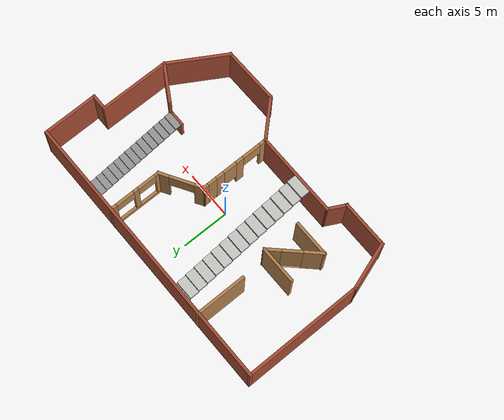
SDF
<?xml version='1.0'?>
<sdf version='1.7'>
  <model name='zsq'>
    <pose>0.816761 -0.486913 0 0 -0 0</pose>
    <link name='Stairs_1'>
      <visual name='Stairs_1_Visual_0'>
        <pose>-4.28021 8.9176 0.166667 0 -0 0</pose>
        <geometry>
          <box>
            <size>2.03694 1.02497 0.333333</size>
          </box>
        </geometry>
        <material>
          <script>
            <uri>file://media/materials/scripts/gazebo.material</uri>
            <name>Gazebo/CeilingTiled</name>
          </script>
          <ambient>1 1 1 1</ambient>
        </material>
        <meta>
          <layer>0</layer>
        </meta>
      </visual>
      <collision name='Stairs_1_Collision_0'>
        <geometry>
          <box>
            <size>2.03694 1.02497 0.333333</size>
          </box>
        </geometry>
        <pose>-4.28021 8.9176 0.166667 0 -0 0</pose>
      </collision>
      <visual name='Stairs_1_Visual_1'>
        <pose>-4.28021 7.89262 0.5 0 -0 0</pose>
        <geometry>
          <box>
            <size>2.03694 1.02497 0.333333</size>
          </box>
        </geometry>
        <material>
          <script>
            <uri>file://media/materials/scripts/gazebo.material</uri>
            <name>Gazebo/CeilingTiled</name>
          </script>
          <ambient>1 1 1 1</ambient>
        </material>
        <meta>
          <layer>0</layer>
        </meta>
      </visual>
      <collision name='Stairs_1_Collision_1'>
        <geometry>
          <box>
            <size>2.03694 1.02497 0.333333</size>
          </box>
        </geometry>
        <pose>-4.28021 7.89262 0.5 0 -0 0</pose>
      </collision>
      <visual name='Stairs_1_Visual_2'>
        <pose>-4.28021 6.86765 0.833333 0 -0 0</pose>
        <geometry>
          <box>
            <size>2.03694 1.02497 0.333333</size>
          </box>
        </geometry>
        <material>
          <script>
            <uri>file://media/materials/scripts/gazebo.material</uri>
            <name>Gazebo/CeilingTiled</name>
          </script>
          <ambient>1 1 1 1</ambient>
        </material>
        <meta>
          <layer>0</layer>
        </meta>
      </visual>
      <collision name='Stairs_1_Collision_2'>
        <geometry>
          <box>
            <size>2.03694 1.02497 0.333333</size>
          </box>
        </geometry>
        <pose>-4.28021 6.86765 0.833333 0 -0 0</pose>
      </collision>
      <visual name='Stairs_1_Visual_3'>
        <pose>-4.28021 5.84268 1.16667 0 -0 0</pose>
        <geometry>
          <box>
            <size>2.03694 1.02497 0.333333</size>
          </box>
        </geometry>
        <material>
          <script>
            <uri>file://media/materials/scripts/gazebo.material</uri>
            <name>Gazebo/CeilingTiled</name>
          </script>
          <ambient>1 1 1 1</ambient>
        </material>
        <meta>
          <layer>0</layer>
        </meta>
      </visual>
      <collision name='Stairs_1_Collision_3'>
        <geometry>
          <box>
            <size>2.03694 1.02497 0.333333</size>
          </box>
        </geometry>
        <pose>-4.28021 5.84268 1.16667 0 -0 0</pose>
      </collision>
      <visual name='Stairs_1_Visual_4'>
        <pose>-4.28021 4.81771 1.5 0 -0 0</pose>
        <geometry>
          <box>
            <size>2.03694 1.02497 0.333333</size>
          </box>
        </geometry>
        <material>
          <script>
            <uri>file://media/materials/scripts/gazebo.material</uri>
            <name>Gazebo/CeilingTiled</name>
          </script>
          <ambient>1 1 1 1</ambient>
        </material>
        <meta>
          <layer>0</layer>
        </meta>
      </visual>
      <collision name='Stairs_1_Collision_4'>
        <geometry>
          <box>
            <size>2.03694 1.02497 0.333333</size>
          </box>
        </geometry>
        <pose>-4.28021 4.81771 1.5 0 -0 0</pose>
      </collision>
      <visual name='Stairs_1_Visual_5'>
        <pose>-4.28021 3.79273 1.83333 0 -0 0</pose>
        <geometry>
          <box>
            <size>2.03694 1.02497 0.333333</size>
          </box>
        </geometry>
        <material>
          <script>
            <uri>file://media/materials/scripts/gazebo.material</uri>
            <name>Gazebo/CeilingTiled</name>
          </script>
          <ambient>1 1 1 1</ambient>
        </material>
        <meta>
          <layer>0</layer>
        </meta>
      </visual>
      <collision name='Stairs_1_Collision_5'>
        <geometry>
          <box>
            <size>2.03694 1.02497 0.333333</size>
          </box>
        </geometry>
        <pose>-4.28021 3.79273 1.83333 0 -0 0</pose>
      </collision>
      <visual name='Stairs_1_Visual_6'>
        <pose>-4.28021 2.76776 2.16667 0 -0 0</pose>
        <geometry>
          <box>
            <size>2.03694 1.02497 0.333333</size>
          </box>
        </geometry>
        <material>
          <script>
            <uri>file://media/materials/scripts/gazebo.material</uri>
            <name>Gazebo/CeilingTiled</name>
          </script>
          <ambient>1 1 1 1</ambient>
        </material>
        <meta>
          <layer>0</layer>
        </meta>
      </visual>
      <collision name='Stairs_1_Collision_6'>
        <geometry>
          <box>
            <size>2.03694 1.02497 0.333333</size>
          </box>
        </geometry>
        <pose>-4.28021 2.76776 2.16667 0 -0 0</pose>
      </collision>
      <visual name='Stairs_1_Visual_7'>
        <pose>-4.28021 1.74279 2.5 0 -0 0</pose>
        <geometry>
          <box>
            <size>2.03694 1.02497 0.333333</size>
          </box>
        </geometry>
        <material>
          <script>
            <uri>file://media/materials/scripts/gazebo.material</uri>
            <name>Gazebo/CeilingTiled</name>
          </script>
          <ambient>1 1 1 1</ambient>
        </material>
        <meta>
          <layer>0</layer>
        </meta>
      </visual>
      <collision name='Stairs_1_Collision_7'>
        <geometry>
          <box>
            <size>2.03694 1.02497 0.333333</size>
          </box>
        </geometry>
        <pose>-4.28021 1.74279 2.5 0 -0 0</pose>
      </collision>
      <visual name='Stairs_1_Visual_8'>
        <pose>-4.28021 0.717818 2.83333 0 -0 0</pose>
        <geometry>
          <box>
            <size>2.03694 1.02497 0.333333</size>
          </box>
        </geometry>
        <material>
          <script>
            <uri>file://media/materials/scripts/gazebo.material</uri>
            <name>Gazebo/CeilingTiled</name>
          </script>
          <ambient>1 1 1 1</ambient>
        </material>
        <meta>
          <layer>0</layer>
        </meta>
      </visual>
      <collision name='Stairs_1_Collision_8'>
        <geometry>
          <box>
            <size>2.03694 1.02497 0.333333</size>
          </box>
        </geometry>
        <pose>-4.28021 0.717818 2.83333 0 -0 0</pose>
      </collision>
      <visual name='Stairs_1_Visual_9'>
        <pose>-4.28021 -0.307154 3.16667 0 -0 0</pose>
        <geometry>
          <box>
            <size>2.03694 1.02497 0.333333</size>
          </box>
        </geometry>
        <material>
          <script>
            <uri>file://media/materials/scripts/gazebo.material</uri>
            <name>Gazebo/CeilingTiled</name>
          </script>
          <ambient>1 1 1 1</ambient>
        </material>
        <meta>
          <layer>0</layer>
        </meta>
      </visual>
      <collision name='Stairs_1_Collision_9'>
        <geometry>
          <box>
            <size>2.03694 1.02497 0.333333</size>
          </box>
        </geometry>
        <pose>-4.28021 -0.307154 3.16667 0 -0 0</pose>
      </collision>
      <visual name='Stairs_1_Visual_10'>
        <pose>-4.28021 -1.33213 3.5 0 -0 0</pose>
        <geometry>
          <box>
            <size>2.03694 1.02497 0.333333</size>
          </box>
        </geometry>
        <material>
          <script>
            <uri>file://media/materials/scripts/gazebo.material</uri>
            <name>Gazebo/CeilingTiled</name>
          </script>
          <ambient>1 1 1 1</ambient>
        </material>
        <meta>
          <layer>0</layer>
        </meta>
      </visual>
      <collision name='Stairs_1_Collision_10'>
        <geometry>
          <box>
            <size>2.03694 1.02497 0.333333</size>
          </box>
        </geometry>
        <pose>-4.28021 -1.33213 3.5 0 -0 0</pose>
      </collision>
      <visual name='Stairs_1_Visual_11'>
        <pose>-4.28021 -2.3571 3.83333 0 -0 0</pose>
        <geometry>
          <box>
            <size>2.03694 1.02497 0.333333</size>
          </box>
        </geometry>
        <material>
          <script>
            <uri>file://media/materials/scripts/gazebo.material</uri>
            <name>Gazebo/CeilingTiled</name>
          </script>
          <ambient>1 1 1 1</ambient>
        </material>
        <meta>
          <layer>0</layer>
        </meta>
      </visual>
      <collision name='Stairs_1_Collision_11'>
        <geometry>
          <box>
            <size>2.03694 1.02497 0.333333</size>
          </box>
        </geometry>
        <pose>-4.28021 -2.3571 3.83333 0 -0 0</pose>
      </collision>
      <visual name='Stairs_1_Visual_12'>
        <pose>-4.28021 -3.38207 4.16667 0 -0 0</pose>
        <geometry>
          <box>
            <size>2.03694 1.02497 0.333333</size>
          </box>
        </geometry>
        <material>
          <script>
            <uri>file://media/materials/scripts/gazebo.material</uri>
            <name>Gazebo/CeilingTiled</name>
          </script>
          <ambient>1 1 1 1</ambient>
        </material>
        <meta>
          <layer>0</layer>
        </meta>
      </visual>
      <collision name='Stairs_1_Collision_12'>
        <geometry>
          <box>
            <size>2.03694 1.02497 0.333333</size>
          </box>
        </geometry>
        <pose>-4.28021 -3.38207 4.16667 0 -0 0</pose>
      </collision>
      <visual name='Stairs_1_Visual_13'>
        <pose>-4.28021 -4.40704 4.5 0 -0 0</pose>
        <geometry>
          <box>
            <size>2.03694 1.02497 0.333333</size>
          </box>
        </geometry>
        <material>
          <script>
            <uri>file://media/materials/scripts/gazebo.material</uri>
            <name>Gazebo/CeilingTiled</name>
          </script>
          <ambient>1 1 1 1</ambient>
        </material>
        <meta>
          <layer>0</layer>
        </meta>
      </visual>
      <collision name='Stairs_1_Collision_13'>
        <geometry>
          <box>
            <size>2.03694 1.02497 0.333333</size>
          </box>
        </geometry>
        <pose>-4.28021 -4.40704 4.5 0 -0 0</pose>
      </collision>
      <visual name='Stairs_1_Visual_14'>
        <pose>-4.28021 -5.43201 4.83333 0 -0 0</pose>
        <geometry>
          <box>
            <size>2.03694 1.02497 0.333333</size>
          </box>
        </geometry>
        <material>
          <script>
            <uri>file://media/materials/scripts/gazebo.material</uri>
            <name>Gazebo/CeilingTiled</name>
          </script>
          <ambient>1 1 1 1</ambient>
        </material>
        <meta>
          <layer>0</layer>
        </meta>
      </visual>
      <collision name='Stairs_1_Collision_14'>
        <geometry>
          <box>
            <size>2.03694 1.02497 0.333333</size>
          </box>
        </geometry>
        <pose>-4.28021 -5.43201 4.83333 0 -0 0</pose>
      </collision>
    </link>
    <link name='Stairs_2'>
      <visual name='Stairs_2_Visual_0'>
        <pose>9.08987 8.89378 0.083333 0 -0 0</pose>
        <geometry>
          <box>
            <size>1.73875 0.716659 0.166667</size>
          </box>
        </geometry>
        <material>
          <script>
            <uri>file://media/materials/scripts/gazebo.material</uri>
            <name>Gazebo/Grey</name>
          </script>
          <ambient>1 1 1 1</ambient>
        </material>
        <meta>
          <layer>0</layer>
        </meta>
      </visual>
      <collision name='Stairs_2_Collision_0'>
        <geometry>
          <box>
            <size>1.73875 0.716659 0.166667</size>
          </box>
        </geometry>
        <pose>9.08987 8.89378 0.083333 0 -0 0</pose>
      </collision>
      <visual name='Stairs_2_Visual_1'>
        <pose>9.08987 8.17712 0.25 0 -0 0</pose>
        <geometry>
          <box>
            <size>1.73875 0.716659 0.166667</size>
          </box>
        </geometry>
        <material>
          <script>
            <uri>file://media/materials/scripts/gazebo.material</uri>
            <name>Gazebo/Grey</name>
          </script>
          <ambient>1 1 1 1</ambient>
        </material>
        <meta>
          <layer>0</layer>
        </meta>
      </visual>
      <collision name='Stairs_2_Collision_1'>
        <geometry>
          <box>
            <size>1.73875 0.716659 0.166667</size>
          </box>
        </geometry>
        <pose>9.08987 8.17712 0.25 0 -0 0</pose>
      </collision>
      <visual name='Stairs_2_Visual_2'>
        <pose>9.08987 7.46046 0.416667 0 -0 0</pose>
        <geometry>
          <box>
            <size>1.73875 0.716659 0.166667</size>
          </box>
        </geometry>
        <material>
          <script>
            <uri>file://media/materials/scripts/gazebo.material</uri>
            <name>Gazebo/Grey</name>
          </script>
          <ambient>1 1 1 1</ambient>
        </material>
        <meta>
          <layer>0</layer>
        </meta>
      </visual>
      <collision name='Stairs_2_Collision_2'>
        <geometry>
          <box>
            <size>1.73875 0.716659 0.166667</size>
          </box>
        </geometry>
        <pose>9.08987 7.46046 0.416667 0 -0 0</pose>
      </collision>
      <visual name='Stairs_2_Visual_3'>
        <pose>9.08987 6.7438 0.583333 0 -0 0</pose>
        <geometry>
          <box>
            <size>1.73875 0.716659 0.166667</size>
          </box>
        </geometry>
        <material>
          <script>
            <uri>file://media/materials/scripts/gazebo.material</uri>
            <name>Gazebo/Grey</name>
          </script>
          <ambient>1 1 1 1</ambient>
        </material>
        <meta>
          <layer>0</layer>
        </meta>
      </visual>
      <collision name='Stairs_2_Collision_3'>
        <geometry>
          <box>
            <size>1.73875 0.716659 0.166667</size>
          </box>
        </geometry>
        <pose>9.08987 6.7438 0.583333 0 -0 0</pose>
      </collision>
      <visual name='Stairs_2_Visual_4'>
        <pose>9.08987 6.02714 0.75 0 -0 0</pose>
        <geometry>
          <box>
            <size>1.73875 0.716659 0.166667</size>
          </box>
        </geometry>
        <material>
          <script>
            <uri>file://media/materials/scripts/gazebo.material</uri>
            <name>Gazebo/Grey</name>
          </script>
          <ambient>1 1 1 1</ambient>
        </material>
        <meta>
          <layer>0</layer>
        </meta>
      </visual>
      <collision name='Stairs_2_Collision_4'>
        <geometry>
          <box>
            <size>1.73875 0.716659 0.166667</size>
          </box>
        </geometry>
        <pose>9.08987 6.02714 0.75 0 -0 0</pose>
      </collision>
      <visual name='Stairs_2_Visual_5'>
        <pose>9.08987 5.31048 0.916667 0 -0 0</pose>
        <geometry>
          <box>
            <size>1.73875 0.716659 0.166667</size>
          </box>
        </geometry>
        <material>
          <script>
            <uri>file://media/materials/scripts/gazebo.material</uri>
            <name>Gazebo/Grey</name>
          </script>
          <ambient>1 1 1 1</ambient>
        </material>
        <meta>
          <layer>0</layer>
        </meta>
      </visual>
      <collision name='Stairs_2_Collision_5'>
        <geometry>
          <box>
            <size>1.73875 0.716659 0.166667</size>
          </box>
        </geometry>
        <pose>9.08987 5.31048 0.916667 0 -0 0</pose>
      </collision>
      <visual name='Stairs_2_Visual_6'>
        <pose>9.08987 4.59382 1.08333 0 -0 0</pose>
        <geometry>
          <box>
            <size>1.73875 0.716659 0.166667</size>
          </box>
        </geometry>
        <material>
          <script>
            <uri>file://media/materials/scripts/gazebo.material</uri>
            <name>Gazebo/Grey</name>
          </script>
          <ambient>1 1 1 1</ambient>
        </material>
        <meta>
          <layer>0</layer>
        </meta>
      </visual>
      <collision name='Stairs_2_Collision_6'>
        <geometry>
          <box>
            <size>1.73875 0.716659 0.166667</size>
          </box>
        </geometry>
        <pose>9.08987 4.59382 1.08333 0 -0 0</pose>
      </collision>
      <visual name='Stairs_2_Visual_7'>
        <pose>9.08987 3.87717 1.25 0 -0 0</pose>
        <geometry>
          <box>
            <size>1.73875 0.716659 0.166667</size>
          </box>
        </geometry>
        <material>
          <script>
            <uri>file://media/materials/scripts/gazebo.material</uri>
            <name>Gazebo/Grey</name>
          </script>
          <ambient>1 1 1 1</ambient>
        </material>
        <meta>
          <layer>0</layer>
        </meta>
      </visual>
      <collision name='Stairs_2_Collision_7'>
        <geometry>
          <box>
            <size>1.73875 0.716659 0.166667</size>
          </box>
        </geometry>
        <pose>9.08987 3.87717 1.25 0 -0 0</pose>
      </collision>
      <visual name='Stairs_2_Visual_8'>
        <pose>9.08987 3.16051 1.41667 0 -0 0</pose>
        <geometry>
          <box>
            <size>1.73875 0.716659 0.166667</size>
          </box>
        </geometry>
        <material>
          <script>
            <uri>file://media/materials/scripts/gazebo.material</uri>
            <name>Gazebo/Grey</name>
          </script>
          <ambient>1 1 1 1</ambient>
        </material>
        <meta>
          <layer>0</layer>
        </meta>
      </visual>
      <collision name='Stairs_2_Collision_8'>
        <geometry>
          <box>
            <size>1.73875 0.716659 0.166667</size>
          </box>
        </geometry>
        <pose>9.08987 3.16051 1.41667 0 -0 0</pose>
      </collision>
      <visual name='Stairs_2_Visual_9'>
        <pose>9.08987 2.44385 1.58333 0 -0 0</pose>
        <geometry>
          <box>
            <size>1.73875 0.716659 0.166667</size>
          </box>
        </geometry>
        <material>
          <script>
            <uri>file://media/materials/scripts/gazebo.material</uri>
            <name>Gazebo/Grey</name>
          </script>
          <ambient>1 1 1 1</ambient>
        </material>
        <meta>
          <layer>0</layer>
        </meta>
      </visual>
      <collision name='Stairs_2_Collision_9'>
        <geometry>
          <box>
            <size>1.73875 0.716659 0.166667</size>
          </box>
        </geometry>
        <pose>9.08987 2.44385 1.58333 0 -0 0</pose>
      </collision>
      <visual name='Stairs_2_Visual_10'>
        <pose>9.08987 1.72719 1.75 0 -0 0</pose>
        <geometry>
          <box>
            <size>1.73875 0.716659 0.166667</size>
          </box>
        </geometry>
        <material>
          <script>
            <uri>file://media/materials/scripts/gazebo.material</uri>
            <name>Gazebo/Grey</name>
          </script>
          <ambient>1 1 1 1</ambient>
        </material>
        <meta>
          <layer>0</layer>
        </meta>
      </visual>
      <collision name='Stairs_2_Collision_10'>
        <geometry>
          <box>
            <size>1.73875 0.716659 0.166667</size>
          </box>
        </geometry>
        <pose>9.08987 1.72719 1.75 0 -0 0</pose>
      </collision>
      <visual name='Stairs_2_Visual_11'>
        <pose>9.08987 1.01053 1.91667 0 -0 0</pose>
        <geometry>
          <box>
            <size>1.73875 0.716659 0.166667</size>
          </box>
        </geometry>
        <material>
          <script>
            <uri>file://media/materials/scripts/gazebo.material</uri>
            <name>Gazebo/Grey</name>
          </script>
          <ambient>1 1 1 1</ambient>
        </material>
        <meta>
          <layer>0</layer>
        </meta>
      </visual>
      <collision name='Stairs_2_Collision_11'>
        <geometry>
          <box>
            <size>1.73875 0.716659 0.166667</size>
          </box>
        </geometry>
        <pose>9.08987 1.01053 1.91667 0 -0 0</pose>
      </collision>
      <visual name='Stairs_2_Visual_12'>
        <pose>9.08987 0.293871 2.08333 0 -0 0</pose>
        <geometry>
          <box>
            <size>1.73875 0.716659 0.166667</size>
          </box>
        </geometry>
        <material>
          <script>
            <uri>file://media/materials/scripts/gazebo.material</uri>
            <name>Gazebo/Grey</name>
          </script>
          <ambient>1 1 1 1</ambient>
        </material>
        <meta>
          <layer>0</layer>
        </meta>
      </visual>
      <collision name='Stairs_2_Collision_12'>
        <geometry>
          <box>
            <size>1.73875 0.716659 0.166667</size>
          </box>
        </geometry>
        <pose>9.08987 0.293871 2.08333 0 -0 0</pose>
      </collision>
      <visual name='Stairs_2_Visual_13'>
        <pose>9.08987 -0.422788 2.25 0 -0 0</pose>
        <geometry>
          <box>
            <size>1.73875 0.716659 0.166667</size>
          </box>
        </geometry>
        <material>
          <script>
            <uri>file://media/materials/scripts/gazebo.material</uri>
            <name>Gazebo/Grey</name>
          </script>
          <ambient>1 1 1 1</ambient>
        </material>
        <meta>
          <layer>0</layer>
        </meta>
      </visual>
      <collision name='Stairs_2_Collision_13'>
        <geometry>
          <box>
            <size>1.73875 0.716659 0.166667</size>
          </box>
        </geometry>
        <pose>9.08987 -0.422788 2.25 0 -0 0</pose>
      </collision>
      <visual name='Stairs_2_Visual_14'>
        <pose>9.08987 -1.13945 2.41667 0 -0 0</pose>
        <geometry>
          <box>
            <size>1.73875 0.716659 0.166667</size>
          </box>
        </geometry>
        <material>
          <script>
            <uri>file://media/materials/scripts/gazebo.material</uri>
            <name>Gazebo/Grey</name>
          </script>
          <ambient>1 1 1 1</ambient>
        </material>
        <meta>
          <layer>0</layer>
        </meta>
      </visual>
      <collision name='Stairs_2_Collision_14'>
        <geometry>
          <box>
            <size>1.73875 0.716659 0.166667</size>
          </box>
        </geometry>
        <pose>9.08987 -1.13945 2.41667 0 -0 0</pose>
      </collision>
    </link>
    <link name='Wall_0'>
      <collision name='Wall_0_Collision'>
        <geometry>
          <box>
            <size>30.1505 0.3 5</size>
          </box>
        </geometry>
        <pose>0 0 2.5 0 -0 0</pose>
      </collision>
      <visual name='Wall_0_Visual'>
        <pose>0 0 2.5 0 -0 0</pose>
        <geometry>
          <box>
            <size>30.1505 0.3 5</size>
          </box>
        </geometry>
        <material>
          <script>
            <uri>file://media/materials/scripts/gazebo.material</uri>
            <name>Gazebo/Bricks</name>
          </script>
          <ambient>1 1 1 1</ambient>
        </material>
        <meta>
          <layer>0</layer>
        </meta>
      </visual>
      <pose>-0.007761 9.33091 0 0 -0 0</pose>
    </link>
    <link name='Wall_10'>
      <collision name='Wall_10_Collision'>
        <geometry>
          <box>
            <size>7.58847 0.3 5</size>
          </box>
        </geometry>
        <pose>0 0 2.5 0 -0 0</pose>
      </collision>
      <visual name='Wall_10_Visual'>
        <pose>0 0 2.5 0 -0 0</pose>
        <geometry>
          <box>
            <size>7.58847 0.3 5</size>
          </box>
        </geometry>
        <material>
          <script>
            <uri>file://media/materials/scripts/gazebo.material</uri>
            <name>Gazebo/Bricks</name>
          </script>
          <ambient>1 1 1 1</ambient>
        </material>
        <meta>
          <layer>0</layer>
        </meta>
      </visual>
      <pose>13.4042 -0.017087 0 0 -0 1.5708</pose>
    </link>
    <link name='Wall_11'>
      <collision name='Wall_11_Collision'>
        <geometry>
          <box>
            <size>1.858 0.3 5</size>
          </box>
        </geometry>
        <pose>0 0 2.5 0 -0 0</pose>
      </collision>
      <visual name='Wall_11_Visual'>
        <pose>0 0 2.5 0 -0 0</pose>
        <geometry>
          <box>
            <size>1.858 0.3 5</size>
          </box>
        </geometry>
        <material>
          <script>
            <uri>file://media/materials/scripts/gazebo.material</uri>
            <name>Gazebo/Bricks</name>
          </script>
          <ambient>1 1 1 1</ambient>
        </material>
        <meta>
          <layer>0</layer>
        </meta>
      </visual>
      <pose>14.1832 3.62691 0 0 -0 0</pose>
    </link>
    <link name='Wall_17'>
      <collision name='Wall_17_Collision'>
        <geometry>
          <box>
            <size>5.94805 0.3 5</size>
          </box>
        </geometry>
        <pose>0 0 2.5 0 -0 0</pose>
      </collision>
      <visual name='Wall_17_Visual'>
        <pose>0 0 2.5 0 -0 0</pose>
        <geometry>
          <box>
            <size>5.94805 0.3 5</size>
          </box>
        </geometry>
        <material>
          <script>
            <uri>file://media/materials/scripts/gazebo.material</uri>
            <name>Gazebo/Bricks</name>
          </script>
          <ambient>1 1 1 1</ambient>
        </material>
        <meta>
          <layer>0</layer>
        </meta>
      </visual>
      <pose>14.9407 6.50691 0 0 -0 -1.56248</pose>
    </link>
    <link name='Wall_19'>
      <collision name='Wall_19_Collision'>
        <geometry>
          <box>
            <size>5.5 0.3 5</size>
          </box>
        </geometry>
        <pose>0 0 2.5 0 -0 0</pose>
      </collision>
      <visual name='Wall_19_Visual'>
        <pose>0 0 2.5 0 -0 0</pose>
        <geometry>
          <box>
            <size>5.5 0.3 5</size>
          </box>
        </geometry>
        <material>
          <script>
            <uri>file://media/materials/scripts/gazebo.material</uri>
            <name>Gazebo/Wood</name>
          </script>
          <ambient>1 1 1 1</ambient>
        </material>
        <meta>
          <layer>0</layer>
        </meta>
      </visual>
      <pose>-7.69476 6.74191 0 0 -0 -1.5708</pose>
    </link>
    <link name='Wall_2'>
      <collision name='Wall_2_Collision'>
        <geometry>
          <box>
            <size>12.6574 0.3 5</size>
          </box>
        </geometry>
        <pose>0 0 2.5 0 -0 0</pose>
      </collision>
      <visual name='Wall_2_Visual'>
        <pose>0 0 2.5 0 -0 0</pose>
        <geometry>
          <box>
            <size>12.6574 0.3 5</size>
          </box>
        </geometry>
        <material>
          <script>
            <uri>file://media/materials/scripts/gazebo.material</uri>
            <name>Gazebo/Bricks</name>
          </script>
          <ambient>1 1 1 1</ambient>
        </material>
        <meta>
          <layer>0</layer>
        </meta>
      </visual>
      <pose>-14.9293 3.15241 0 0 -0 -1.57023</pose>
    </link>
    <link name='Wall_21'>
      <pose>1.20441 -2.32409 0 0 -0 1.57084</pose>
      <visual name='Wall_21_Visual_0'>
        <pose>-3.43141 0 2.5 0 -0 0</pose>
        <geometry>
          <box>
            <size>0.887173 0.3 5</size>
          </box>
        </geometry>
        <material>
          <script>
            <uri>file://media/materials/scripts/gazebo.material</uri>
            <name>Gazebo/Wood</name>
          </script>
          <ambient>1 1 1 1</ambient>
        </material>
        <meta>
          <layer>0</layer>
        </meta>
      </visual>
      <collision name='Wall_21_Collision_0'>
        <geometry>
          <box>
            <size>0.887173 0.3 5</size>
          </box>
        </geometry>
        <pose>-3.43141 0 2.5 0 -0 0</pose>
      </collision>
      <visual name='Wall_21_Visual_1'>
        <pose>-0.559417 0 2.5 0 -0 0</pose>
        <geometry>
          <box>
            <size>0.85682 0.3 5</size>
          </box>
        </geometry>
        <material>
          <script>
            <uri>file://media/materials/scripts/gazebo.material</uri>
            <name>Gazebo/Wood</name>
          </script>
          <ambient>1 1 1 1</ambient>
        </material>
        <meta>
          <layer>0</layer>
        </meta>
      </visual>
      <collision name='Wall_21_Collision_1'>
        <geometry>
          <box>
            <size>0.85682 0.3 5</size>
          </box>
        </geometry>
        <pose>-0.559417 0 2.5 0 -0 0</pose>
      </collision>
      <visual name='Wall_21_Visual_2'>
        <pose>1.808 0 2.5 0 -0 0</pose>
        <geometry>
          <box>
            <size>0.878016 0.3 5</size>
          </box>
        </geometry>
        <material>
          <script>
            <uri>file://media/materials/scripts/gazebo.material</uri>
            <name>Gazebo/Wood</name>
          </script>
          <ambient>1 1 1 1</ambient>
        </material>
        <meta>
          <layer>0</layer>
        </meta>
      </visual>
      <collision name='Wall_21_Collision_2'>
        <geometry>
          <box>
            <size>0.878016 0.3 5</size>
          </box>
        </geometry>
        <pose>1.808 0 2.5 0 -0 0</pose>
      </collision>
      <visual name='Wall_21_Visual_3'>
        <pose>3.56101 0 2.5 0 -0 0</pose>
        <geometry>
          <box>
            <size>0.627991 0.3 5</size>
          </box>
        </geometry>
        <material>
          <script>
            <uri>file://media/materials/scripts/gazebo.material</uri>
            <name>Gazebo/Wood</name>
          </script>
          <ambient>1 1 1 1</ambient>
        </material>
        <meta>
          <layer>0</layer>
        </meta>
      </visual>
      <collision name='Wall_21_Collision_3'>
        <geometry>
          <box>
            <size>0.627991 0.3 5</size>
          </box>
        </geometry>
        <pose>3.56101 0 2.5 0 -0 0</pose>
      </collision>
      <visual name='Wall_21_Visual_4'>
        <pose>2.74701 0 0 0 -0 0</pose>
        <geometry>
          <box>
            <size>1 0.3 0</size>
          </box>
        </geometry>
        <material>
          <script>
            <uri>file://media/materials/scripts/gazebo.material</uri>
            <name>Gazebo/Wood</name>
          </script>
          <ambient>1 1 1 1</ambient>
        </material>
        <meta>
          <layer>0</layer>
        </meta>
      </visual>
      <collision name='Wall_21_Collision_4'>
        <geometry>
          <box>
            <size>1 0.3 0</size>
          </box>
        </geometry>
        <pose>2.74701 0 0 0 -0 0</pose>
      </collision>
      <visual name='Wall_21_Visual_5'>
        <pose>2.74701 0 2.75 0 -0 0</pose>
        <geometry>
          <box>
            <size>1 0.3 4.5</size>
          </box>
        </geometry>
        <material>
          <script>
            <uri>file://media/materials/scripts/gazebo.material</uri>
            <name>Gazebo/Wood</name>
          </script>
          <ambient>1 1 1 1</ambient>
        </material>
        <meta>
          <layer>0</layer>
        </meta>
      </visual>
      <collision name='Wall_21_Collision_5'>
        <geometry>
          <box>
            <size>1 0.3 4.5</size>
          </box>
        </geometry>
        <pose>2.74701 0 2.75 0 -0 0</pose>
      </collision>
      <visual name='Wall_21_Visual_6'>
        <pose>0.618993 0 3.25 0 -0 0</pose>
        <geometry>
          <box>
            <size>1.5 0.3 3.5</size>
          </box>
        </geometry>
        <material>
          <script>
            <uri>file://media/materials/scripts/gazebo.material</uri>
            <name>Gazebo/Wood</name>
          </script>
          <ambient>1 1 1 1</ambient>
        </material>
        <meta>
          <layer>0</layer>
        </meta>
      </visual>
      <collision name='Wall_21_Collision_6'>
        <geometry>
          <box>
            <size>1.5 0.3 3.5</size>
          </box>
        </geometry>
        <pose>0.618993 0 3.25 0 -0 0</pose>
      </collision>
      <visual name='Wall_21_Visual_7'>
        <pose>-1.98783 0 4 0 -0 0</pose>
        <geometry>
          <box>
            <size>2 0.3 2</size>
          </box>
        </geometry>
        <material>
          <script>
            <uri>file://media/materials/scripts/gazebo.material</uri>
            <name>Gazebo/Wood</name>
          </script>
          <ambient>1 1 1 1</ambient>
        </material>
        <meta>
          <layer>0</layer>
        </meta>
      </visual>
      <collision name='Wall_21_Collision_7'>
        <geometry>
          <box>
            <size>2 0.3 2</size>
          </box>
        </geometry>
        <pose>-1.98783 0 4 0 -0 0</pose>
      </collision>
    </link>
    <link name='Wall_23'>
      <collision name='Wall_23_Collision'>
        <geometry>
          <box>
            <size>4.31808 0.3 5</size>
          </box>
        </geometry>
        <pose>0 0 2.5 0 -0 0</pose>
      </collision>
      <visual name='Wall_23_Visual'>
        <pose>0 0 2.5 0 -0 0</pose>
        <geometry>
          <box>
            <size>4.31808 0.3 5</size>
          </box>
        </geometry>
        <material>
          <script>
            <uri>file://media/materials/scripts/gazebo.material</uri>
            <name>Gazebo/Bricks</name>
          </script>
          <ambient>1 1 1 1</ambient>
        </material>
        <meta>
          <layer>0</layer>
        </meta>
      </visual>
      <pose>11.6817 -2.62709 0 0 -0 2.60096</pose>
    </link>
    <link name='Wall_24'>
      <collision name='Wall_24_Collision'>
        <geometry>
          <box>
            <size>1.9 0.3 2.5</size>
          </box>
        </geometry>
        <pose>0 0 1.25 0 -0 0</pose>
      </collision>
      <visual name='Wall_24_Visual'>
        <pose>0 0 1.25 0 -0 0</pose>
        <geometry>
          <box>
            <size>1.9 0.3 2.5</size>
          </box>
        </geometry>
        <material>
          <script>
            <uri>file://media/materials/scripts/gazebo.material</uri>
            <name>Gazebo/Bricks</name>
          </script>
          <ambient>1 1 1 1</ambient>
        </material>
        <meta>
          <layer>0</layer>
        </meta>
      </visual>
      <pose>9.15924 -1.59309 0 0 -0 3.14159</pose>
    </link>
    <link name='Wall_26'>
      <pose>5.04124 6.54191 0 0 -0 -1.5708</pose>
      <visual name='Wall_26_Visual_0'>
        <pose>-2.55865 0 2.5 0 -0 0</pose>
        <geometry>
          <box>
            <size>0.783122 0.3 5</size>
          </box>
        </geometry>
        <material>
          <script>
            <uri>file://media/materials/scripts/gazebo.material</uri>
            <name>Gazebo/Wood</name>
          </script>
          <ambient>1 1 1 1</ambient>
        </material>
        <meta>
          <layer>0</layer>
        </meta>
      </visual>
      <collision name='Wall_26_Collision_0'>
        <geometry>
          <box>
            <size>0.783122 0.3 5</size>
          </box>
        </geometry>
        <pose>-2.55865 0 2.5 0 -0 0</pose>
      </collision>
      <visual name='Wall_26_Visual_1'>
        <pose>0.391561 0 0.25 0 -0 0</pose>
        <geometry>
          <box>
            <size>5.11731 0.3 0.5</size>
          </box>
        </geometry>
        <material>
          <script>
            <uri>file://media/materials/scripts/gazebo.material</uri>
            <name>Gazebo/Wood</name>
          </script>
          <ambient>1 1 1 1</ambient>
        </material>
        <meta>
          <layer>0</layer>
        </meta>
      </visual>
      <collision name='Wall_26_Collision_1'>
        <geometry>
          <box>
            <size>5.11731 0.3 0.5</size>
          </box>
        </geometry>
        <pose>0.391561 0 0.25 0 -0 0</pose>
      </collision>
      <visual name='Wall_26_Visual_2'>
        <pose>0.099343 0 2.75 0 -0 0</pose>
        <geometry>
          <box>
            <size>0.532871 0.3 4.5</size>
          </box>
        </geometry>
        <material>
          <script>
            <uri>file://media/materials/scripts/gazebo.material</uri>
            <name>Gazebo/Wood</name>
          </script>
          <ambient>1 1 1 1</ambient>
        </material>
        <meta>
          <layer>0</layer>
        </meta>
      </visual>
      <collision name='Wall_26_Collision_2'>
        <geometry>
          <box>
            <size>0.532871 0.3 4.5</size>
          </box>
        </geometry>
        <pose>0.099343 0 2.75 0 -0 0</pose>
      </collision>
      <visual name='Wall_26_Visual_3'>
        <pose>2.658 0 2.75 0 -0 0</pose>
        <geometry>
          <box>
            <size>0.584437 0.3 4.5</size>
          </box>
        </geometry>
        <material>
          <script>
            <uri>file://media/materials/scripts/gazebo.material</uri>
            <name>Gazebo/Wood</name>
          </script>
          <ambient>1 1 1 1</ambient>
        </material>
        <meta>
          <layer>0</layer>
        </meta>
      </visual>
      <collision name='Wall_26_Collision_3'>
        <geometry>
          <box>
            <size>0.584437 0.3 4.5</size>
          </box>
        </geometry>
        <pose>2.658 0 2.75 0 -0 0</pose>
      </collision>
      <visual name='Wall_26_Visual_4'>
        <pose>-1.16709 0 4.25 0 -0 0</pose>
        <geometry>
          <box>
            <size>2 0.3 1.5</size>
          </box>
        </geometry>
        <material>
          <script>
            <uri>file://media/materials/scripts/gazebo.material</uri>
            <name>Gazebo/Wood</name>
          </script>
          <ambient>1 1 1 1</ambient>
        </material>
        <meta>
          <layer>0</layer>
        </meta>
      </visual>
      <collision name='Wall_26_Collision_4'>
        <geometry>
          <box>
            <size>2 0.3 1.5</size>
          </box>
        </geometry>
        <pose>-1.16709 0 4.25 0 -0 0</pose>
      </collision>
      <visual name='Wall_26_Visual_5'>
        <pose>1.36578 0 4.25 0 -0 0</pose>
        <geometry>
          <box>
            <size>2 0.3 1.5</size>
          </box>
        </geometry>
        <material>
          <script>
            <uri>file://media/materials/scripts/gazebo.material</uri>
            <name>Gazebo/Wood</name>
          </script>
          <ambient>1 1 1 1</ambient>
        </material>
        <meta>
          <layer>0</layer>
        </meta>
      </visual>
      <collision name='Wall_26_Collision_5'>
        <geometry>
          <box>
            <size>2 0.3 1.5</size>
          </box>
        </geometry>
        <pose>1.36578 0 4.25 0 -0 0</pose>
      </collision>
    </link>
    <link name='Wall_29'>
      <collision name='Wall_29_Collision'>
        <geometry>
          <box>
            <size>4 0.3 5</size>
          </box>
        </geometry>
        <pose>0 0 2.5 0 -0 0</pose>
      </collision>
      <visual name='Wall_29_Visual'>
        <pose>0 0 2.5 0 -0 0</pose>
        <geometry>
          <box>
            <size>4 0.3 5</size>
          </box>
        </geometry>
        <material>
          <script>
            <uri>file://media/materials/scripts/gazebo.material</uri>
            <name>Gazebo/Wood</name>
          </script>
          <ambient>1 1 1 1</ambient>
        </material>
        <meta>
          <layer>0</layer>
        </meta>
      </visual>
      <pose>-8.7984 0.912191 0 0 -0 0</pose>
    </link>
    <link name='Wall_3'>
      <collision name='Wall_3_Collision'>
        <geometry>
          <box>
            <size>5.25282 0.3 5</size>
          </box>
        </geometry>
        <pose>0 0 2.5 0 -0 0</pose>
      </collision>
      <visual name='Wall_3_Visual'>
        <pose>0 0 2.5 0 -0 0</pose>
        <geometry>
          <box>
            <size>5.25282 0.3 5</size>
          </box>
        </geometry>
        <material>
          <script>
            <uri>file://media/materials/scripts/gazebo.material</uri>
            <name>Gazebo/Bricks</name>
          </script>
          <ambient>1 1 1 1</ambient>
        </material>
        <meta>
          <layer>0</layer>
        </meta>
      </visual>
      <pose>-14.1433 -5.37559 0 0 -0 -1.2493</pose>
    </link>
    <link name='Wall_30'>
      <pose>-8.77037 -1.0651 0 0 -0 -2.33191</pose>
      <visual name='Wall_30_Visual_0'>
        <pose>-2.01864 0 2.5 0 -0 0</pose>
        <geometry>
          <box>
            <size>1.72432 0.3 5</size>
          </box>
        </geometry>
        <material>
          <script>
            <uri>file://media/materials/scripts/gazebo.material</uri>
            <name>Gazebo/Wood</name>
          </script>
          <ambient>1 1 1 1</ambient>
        </material>
        <meta>
          <layer>0</layer>
        </meta>
      </visual>
      <collision name='Wall_30_Collision_0'>
        <geometry>
          <box>
            <size>1.72432 0.3 5</size>
          </box>
        </geometry>
        <pose>-2.01864 0 2.5 0 -0 0</pose>
      </collision>
      <visual name='Wall_30_Visual_1'>
        <pose>1.86216 0 2.5 0 -0 0</pose>
        <geometry>
          <box>
            <size>2.03728 0.3 5</size>
          </box>
        </geometry>
        <material>
          <script>
            <uri>file://media/materials/scripts/gazebo.material</uri>
            <name>Gazebo/Wood</name>
          </script>
          <ambient>1 1 1 1</ambient>
        </material>
        <meta>
          <layer>0</layer>
        </meta>
      </visual>
      <collision name='Wall_30_Collision_1'>
        <geometry>
          <box>
            <size>2.03728 0.3 5</size>
          </box>
        </geometry>
        <pose>1.86216 0 2.5 0 -0 0</pose>
      </collision>
      <visual name='Wall_30_Visual_2'>
        <pose>-0.15648 0 0 0 -0 0</pose>
        <geometry>
          <box>
            <size>2 0.3 0</size>
          </box>
        </geometry>
        <material>
          <script>
            <uri>file://media/materials/scripts/gazebo.material</uri>
            <name>Gazebo/Wood</name>
          </script>
          <ambient>1 1 1 1</ambient>
        </material>
        <meta>
          <layer>0</layer>
        </meta>
      </visual>
      <collision name='Wall_30_Collision_2'>
        <geometry>
          <box>
            <size>2 0.3 0</size>
          </box>
        </geometry>
        <pose>-0.15648 0 0 0 -0 0</pose>
      </collision>
      <visual name='Wall_30_Visual_3'>
        <pose>-0.15648 0 2.8 0 -0 0</pose>
        <geometry>
          <box>
            <size>2 0.3 4.4</size>
          </box>
        </geometry>
        <material>
          <script>
            <uri>file://media/materials/scripts/gazebo.material</uri>
            <name>Gazebo/Wood</name>
          </script>
          <ambient>1 1 1 1</ambient>
        </material>
        <meta>
          <layer>0</layer>
        </meta>
      </visual>
      <collision name='Wall_30_Collision_3'>
        <geometry>
          <box>
            <size>2 0.3 4.4</size>
          </box>
        </geometry>
        <pose>-0.15648 0 2.8 0 -0 0</pose>
      </collision>
    </link>
    <link name='Wall_31'>
      <collision name='Wall_31_Collision'>
        <geometry>
          <box>
            <size>4 0.3 5</size>
          </box>
        </geometry>
        <pose>0 0 2.5 0 -0 0</pose>
      </collision>
      <visual name='Wall_31_Visual'>
        <pose>0 0 2.5 0 -0 0</pose>
        <geometry>
          <box>
            <size>4 0.3 5</size>
          </box>
        </geometry>
        <material>
          <script>
            <uri>file://media/materials/scripts/gazebo.material</uri>
            <name>Gazebo/Wood</name>
          </script>
          <ambient>1 1 1 1</ambient>
        </material>
        <meta>
          <layer>0</layer>
        </meta>
      </visual>
      <pose>-8.8654 -3.04239 0 0 -0 0</pose>
    </link>
    <link name='Wall_33'>
      <pose>3.12274 2.57141 0 0 -0 0.547822</pose>
      <visual name='Wall_33_Visual_0'>
        <pose>-1.85543 0 2.5 0 -0 0</pose>
        <geometry>
          <box>
            <size>1.08389 0.3 5</size>
          </box>
        </geometry>
        <material>
          <script>
            <uri>file://media/materials/scripts/gazebo.material</uri>
            <name>Gazebo/Wood</name>
          </script>
          <ambient>1 1 1 1</ambient>
        </material>
        <meta>
          <layer>0</layer>
        </meta>
      </visual>
      <collision name='Wall_33_Collision_0'>
        <geometry>
          <box>
            <size>1.08389 0.3 5</size>
          </box>
        </geometry>
        <pose>-1.85543 0 2.5 0 -0 0</pose>
      </collision>
      <visual name='Wall_33_Visual_1'>
        <pose>1.79195 0 2.5 0 -0 0</pose>
        <geometry>
          <box>
            <size>1.21087 0.3 5</size>
          </box>
        </geometry>
        <material>
          <script>
            <uri>file://media/materials/scripts/gazebo.material</uri>
            <name>Gazebo/Wood</name>
          </script>
          <ambient>1 1 1 1</ambient>
        </material>
        <meta>
          <layer>0</layer>
        </meta>
      </visual>
      <collision name='Wall_33_Collision_1'>
        <geometry>
          <box>
            <size>1.21087 0.3 5</size>
          </box>
        </geometry>
        <pose>1.79195 0 2.5 0 -0 0</pose>
      </collision>
      <visual name='Wall_33_Visual_2'>
        <pose>-0.063486 0 4 0 -0 0</pose>
        <geometry>
          <box>
            <size>2.5 0.3 2</size>
          </box>
        </geometry>
        <material>
          <script>
            <uri>file://media/materials/scripts/gazebo.material</uri>
            <name>Gazebo/Wood</name>
          </script>
          <ambient>1 1 1 1</ambient>
        </material>
        <meta>
          <layer>0</layer>
        </meta>
      </visual>
      <collision name='Wall_33_Collision_2'>
        <geometry>
          <box>
            <size>2.5 0.3 2</size>
          </box>
        </geometry>
        <pose>-0.063486 0 4 0 -0 0</pose>
      </collision>
    </link>
    <link name='Wall_4'>
      <collision name='Wall_4_Collision'>
        <geometry>
          <box>
            <size>5.14954 0.3 5</size>
          </box>
        </geometry>
        <pose>0 0 2.5 0 -0 0</pose>
      </collision>
      <visual name='Wall_4_Visual'>
        <pose>0 0 2.5 0 -0 0</pose>
        <geometry>
          <box>
            <size>5.14954 0.3 5</size>
          </box>
        </geometry>
        <material>
          <script>
            <uri>file://media/materials/scripts/gazebo.material</uri>
            <name>Gazebo/Bricks</name>
          </script>
          <ambient>1 1 1 1</ambient>
        </material>
        <meta>
          <layer>0</layer>
        </meta>
      </visual>
      <pose>-10.9358 -7.72509 0 0 -0 0</pose>
    </link>
    <link name='Wall_5'>
      <collision name='Wall_5_Collision'>
        <geometry>
          <box>
            <size>2.19159 0.3 5</size>
          </box>
        </geometry>
        <pose>0 0 2.5 0 -0 0</pose>
      </collision>
      <visual name='Wall_5_Visual'>
        <pose>0 0 2.5 0 -0 0</pose>
        <geometry>
          <box>
            <size>2.19159 0.3 5</size>
          </box>
        </geometry>
        <material>
          <script>
            <uri>file://media/materials/scripts/gazebo.material</uri>
            <name>Gazebo/Bricks</name>
          </script>
          <ambient>1 1 1 1</ambient>
        </material>
        <meta>
          <layer>0</layer>
        </meta>
      </visual>
      <pose>-8.07226 -6.88709 0 0 -0 1.08871</pose>
    </link>
    <link name='Wall_6'>
      <collision name='Wall_6_Collision'>
        <geometry>
          <box>
            <size>9.13855 0.3 5</size>
          </box>
        </geometry>
        <pose>0 0 2.5 0 -0 0</pose>
      </collision>
      <visual name='Wall_6_Visual'>
        <pose>0 0 2.5 0 -0 0</pose>
        <geometry>
          <box>
            <size>9.13855 0.3 5</size>
          </box>
        </geometry>
        <material>
          <script>
            <uri>file://media/materials/scripts/gazebo.material</uri>
            <name>Gazebo/Bricks</name>
          </script>
          <ambient>1 1 1 1</ambient>
        </material>
        <meta>
          <layer>0</layer>
        </meta>
      </visual>
      <pose>-3.21459 -6.04909 0 0 -0 0</pose>
    </link>
    <link name='Wall_7'>
      <collision name='Wall_7_Collision'>
        <geometry>
          <box>
            <size>4.74021 0.3 5</size>
          </box>
        </geometry>
        <pose>0 0 2.5 0 -0 0</pose>
      </collision>
      <visual name='Wall_7_Visual'>
        <pose>0 0 2.5 0 -0 0</pose>
        <geometry>
          <box>
            <size>4.74021 0.3 5</size>
          </box>
        </geometry>
        <material>
          <script>
            <uri>file://media/materials/scripts/gazebo.material</uri>
            <name>Gazebo/Bricks</name>
          </script>
          <ambient>1 1 1 1</ambient>
        </material>
        <meta>
          <layer>0</layer>
        </meta>
      </visual>
      <pose>2.72741 -7.66459 0 0 -0 -0.814917</pose>
    </link>
    <link name='Wall_8'>
      <collision name='Wall_8_Collision'>
        <geometry>
          <box>
            <size>6.14995 0.3 5</size>
          </box>
        </geometry>
        <pose>0 0 2.5 0 -0 0</pose>
      </collision>
      <visual name='Wall_8_Visual'>
        <pose>0 0 2.5 0 -0 0</pose>
        <geometry>
          <box>
            <size>6.14995 0.3 5</size>
          </box>
        </geometry>
        <material>
          <script>
            <uri>file://media/materials/scripts/gazebo.material</uri>
            <name>Gazebo/Bricks</name>
          </script>
          <ambient>1 1 1 1</ambient>
        </material>
        <meta>
          <layer>0</layer>
        </meta>
      </visual>
      <pose>7.17524 -9.24909 0 0 -0 0.010598</pose>
    </link>
    <link name='Wall_9'>
      <collision name='Wall_9_Collision'>
        <geometry>
          <box>
            <size>6.76508 0.3 5</size>
          </box>
        </geometry>
        <pose>0 0 2.5 0 -0 0</pose>
      </collision>
      <visual name='Wall_9_Visual'>
        <pose>0 0 2.5 0 -0 0</pose>
        <geometry>
          <box>
            <size>6.76508 0.3 5</size>
          </box>
        </geometry>
        <material>
          <script>
            <uri>file://media/materials/scripts/gazebo.material</uri>
            <name>Gazebo/Bricks</name>
          </script>
          <ambient>1 1 1 1</ambient>
        </material>
        <meta>
          <layer>0</layer>
        </meta>
      </visual>
      <pose>11.7522 -6.43959 0 0 -0 1.03438</pose>
    </link>
    <static>1</static>
  </model>
</sdf>
